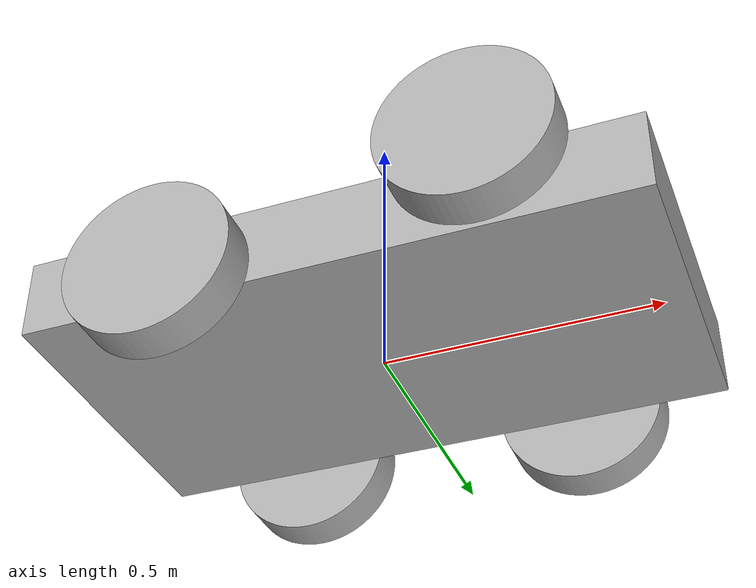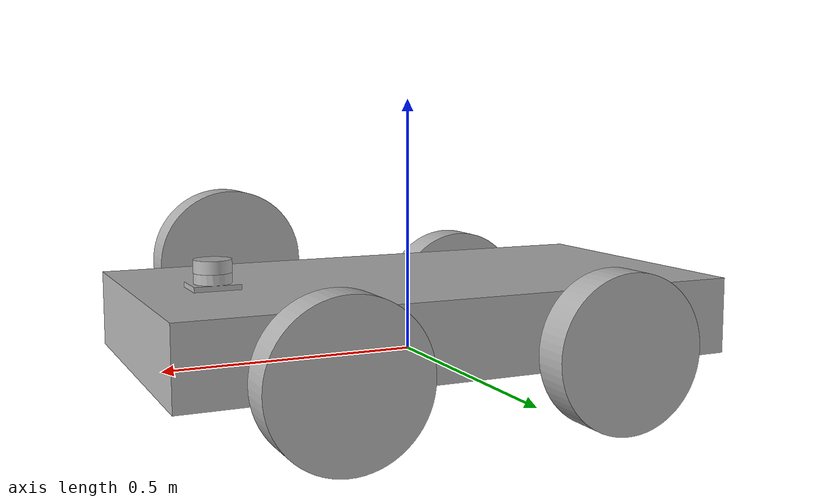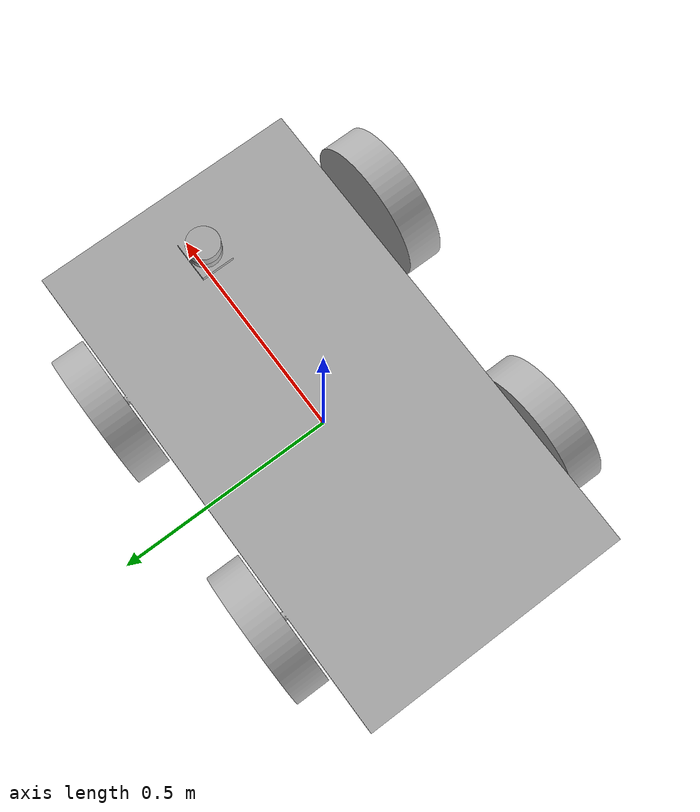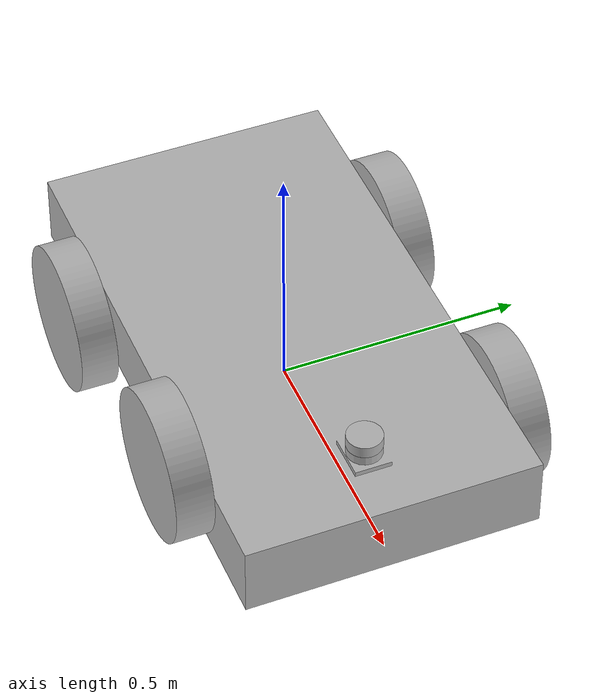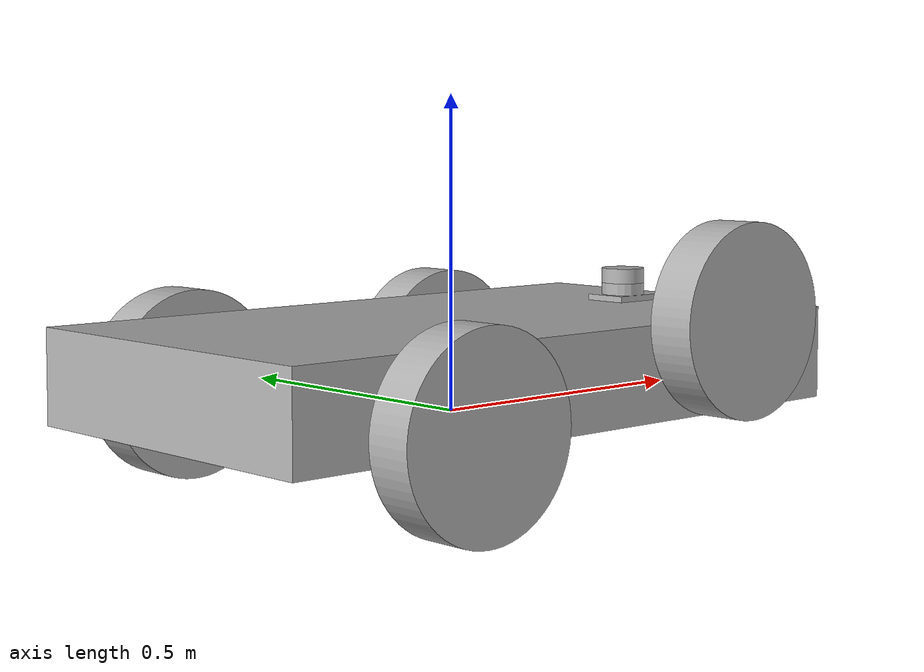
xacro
<?xml version="1.0" ?>
<robot name="Sim" xmlns:xacro="http://www.ros.org/wiki/xacro">

<xacro:include filename="$(find Sim_description)/urdf/materials.xacro" />
<xacro:include filename="$(find Sim_description)/urdf/Sim.trans" />
<xacro:include filename="$(find Sim_description)/urdf/Sim.gazebo" />
<link name="base_link">
  <inertial>
    <origin rpy="0 0 0" xyz="0.0006007577009604456 -2.0009250954814774e-19 0.1912775586930594"/>
    <mass value="105.11118623932714"/>
    <inertia ixx="3.347522" ixy="0.0" ixz="-0.005562" iyy="10.805776" iyz="0.0" izz="13.757255"/>
  </inertial>
  <visual>
    <origin rpy="0 0 0" xyz="0 0 0"/>
    <geometry>
      <mesh filename="package://Sim_description/meshes/base_link.stl" scale="0.001 0.001 0.001"/>
    </geometry>
    <material name="silver"/>
  </visual>
  <collision>
    <origin rpy="0 0 0" xyz="0 0 0"/>
    <geometry>
      <mesh filename="package://Sim_description/meshes/base_link.stl" scale="0.001 0.001 0.001"/>
    </geometry>
  </collision>
</link>

<link name="wheel1_1">
  <inertial>
    <origin rpy="0 0 0" xyz="-1.1102230246251565e-16 -0.03810000000000002 3.6914915568786455e-15"/>
    <mass value="5.17079983877615"/>
    <inertia ixx="0.032526" ixy="0.0" ixz="0.0" iyy="0.060048" iyz="0.0" izz="0.032526"/>
  </inertial>
  <visual>
    <origin rpy="0 0 0" xyz="-0.275 0.31 -0.1524"/>
    <geometry>
      <mesh filename="package://Sim_description/meshes/wheel1_1.stl" scale="0.001 0.001 0.001"/>
    </geometry>
    <material name="silver"/>
  </visual>
  <collision>
    <origin rpy="0 0 0" xyz="-0.275 0.31 -0.1524"/>
    <geometry>
      <mesh filename="package://Sim_description/meshes/wheel1_1.stl" scale="0.001 0.001 0.001"/>
    </geometry>
  </collision>
</link>

<link name="wheel4_1">
  <inertial>
    <origin rpy="0 0 0" xyz="-5.551115123125783e-17 -0.038099999999999856 3.6914915568786455e-15"/>
    <mass value="5.17079983877615"/>
    <inertia ixx="0.032526" ixy="-0.0" ixz="0.0" iyy="0.060048" iyz="0.0" izz="0.032526"/>
  </inertial>
  <visual>
    <origin rpy="0 0 0" xyz="0.275 0.31 -0.1524"/>
    <geometry>
      <mesh filename="package://Sim_description/meshes/wheel4_1.stl" scale="0.001 0.001 0.001"/>
    </geometry>
    <material name="silver"/>
  </visual>
  <collision>
    <origin rpy="0 0 0" xyz="0.275 0.31 -0.1524"/>
    <geometry>
      <mesh filename="package://Sim_description/meshes/wheel4_1.stl" scale="0.001 0.001 0.001"/>
    </geometry>
  </collision>
</link>

<link name="wheel3_1">
  <inertial>
    <origin rpy="0 0 0" xyz="1.1102230246251565e-16 0.03810000000000002 3.6914915568786455e-15"/>
    <mass value="5.17079983877615"/>
    <inertia ixx="0.032526" ixy="-0.0" ixz="0.0" iyy="0.060048" iyz="-0.0" izz="0.032526"/>
  </inertial>
  <visual>
    <origin rpy="0 0 0" xyz="0.275 -0.31 -0.1524"/>
    <geometry>
      <mesh filename="package://Sim_description/meshes/wheel3_1.stl" scale="0.001 0.001 0.001"/>
    </geometry>
    <material name="silver"/>
  </visual>
  <collision>
    <origin rpy="0 0 0" xyz="0.275 -0.31 -0.1524"/>
    <geometry>
      <mesh filename="package://Sim_description/meshes/wheel3_1.stl" scale="0.001 0.001 0.001"/>
    </geometry>
  </collision>
</link>

<link name="wheel2_1">
  <inertial>
    <origin rpy="0 0 0" xyz="1.1102230246251565e-16 0.038099999999999856 3.6914915568786455e-15"/>
    <mass value="5.17079983877615"/>
    <inertia ixx="0.032526" ixy="0.0" ixz="0.0" iyy="0.060048" iyz="0.0" izz="0.032526"/>
  </inertial>
  <visual>
    <origin rpy="0 0 0" xyz="-0.275 -0.31 -0.1524"/>
    <geometry>
      <mesh filename="package://Sim_description/meshes/wheel2_1.stl" scale="0.001 0.001 0.001"/>
    </geometry>
    <material name="silver"/>
  </visual>
  <collision>
    <origin rpy="0 0 0" xyz="-0.275 -0.31 -0.1524"/>
    <geometry>
      <mesh filename="package://Sim_description/meshes/wheel2_1.stl" scale="0.001 0.001 0.001"/>
    </geometry>
  </collision>
</link>

<link name="lidar_1">
  <inertial>
    <origin rpy="0 0 0" xyz="5.551115123125783e-17 -1.388112759759698e-16 0.01250000000000362"/>
    <mass value="0.10789485809488791"/>
    <inertia ixx="4.1e-05" ixy="-0.0" ixz="0.0" iyy="4.1e-05" iyz="-0.0" izz="7e-05"/>
  </inertial>
  <visual>
    <origin rpy="0 0 0" xyz="-0.4 0.0 -0.29615"/>
    <geometry>
      <mesh filename="package://Sim_description/meshes/lidar_1.stl" scale="0.001 0.001 0.001"/>
    </geometry>
    <material name="silver"/>
  </visual>
  <collision>
    <origin rpy="0 0 0" xyz="-0.4 0.0 -0.29615"/>
    <geometry>
      <mesh filename="package://Sim_description/meshes/lidar_1.stl" scale="0.001 0.001 0.001"/>
    </geometry>
  </collision>
</link>

<joint name="Rev6" type="continuous">
  <origin rpy="0 0 0" xyz="0.275 -0.31 0.1524"/>
  <parent link="base_link"/>
  <child link="wheel1_1"/>
  <axis xyz="-0.0 -1.0 0.0"/>
</joint>

<joint name="Rev7" type="continuous">
  <origin rpy="0 0 0" xyz="-0.275 -0.31 0.1524"/>
  <parent link="base_link"/>
  <child link="wheel4_1"/>
  <axis xyz="-0.0 -1.0 0.0"/>
</joint>

<joint name="Rev8" type="continuous">
  <origin rpy="0 0 0" xyz="-0.275 0.31 0.1524"/>
  <parent link="base_link"/>
  <child link="wheel3_1"/>
  <axis xyz="0.0 1.0 0.0"/>
</joint>

<joint name="Rev9" type="continuous">
  <origin rpy="0 0 0" xyz="0.275 0.31 0.1524"/>
  <parent link="base_link"/>
  <child link="wheel2_1"/>
  <axis xyz="0.0 1.0 0.0"/>
</joint>

<joint name="Rigid10" type="fixed">
  <origin rpy="0 0 0" xyz="0.4 0.0 0.29615"/>
  <parent link="base_link"/>
  <child link="lidar_1"/>
</joint>

</robot>

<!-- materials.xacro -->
<robot name="Sim" xmlns:xacro="http://www.ros.org/wiki/xacro" >

<material name="silver">
  <color rgba="0.700 0.700 0.700 1.000"/>
</material>

</robot>

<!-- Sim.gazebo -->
<robot name="Sim" xmlns:xacro="http://www.ros.org/wiki/xacro" >

<xacro:property name="body_color" value="Gazebo/Silver" />

<gazebo>
  <plugin filename="libgazebo_ros_control.so" name="control"/>
</gazebo>
<gazebo reference="base_link">
  <material>${body_color}</material>
  <mu1>0.2</mu1>
  <mu2>0.2</mu2>
  <selfCollide>true</selfCollide>
  <gravity>true</gravity>
</gazebo>

<gazebo reference="wheel1_1">
  <material>${body_color}</material>
  <mu1>0.2</mu1>
  <mu2>0.2</mu2>
  <selfCollide>true</selfCollide>
</gazebo>

<gazebo reference="wheel4_1">
  <material>${body_color}</material>
  <mu1>0.2</mu1>
  <mu2>0.2</mu2>
  <selfCollide>true</selfCollide>
</gazebo>

<gazebo reference="wheel3_1">
  <material>${body_color}</material>
  <mu1>0.2</mu1>
  <mu2>0.2</mu2>
  <selfCollide>true</selfCollide>
</gazebo>

<gazebo reference="wheel2_1">
  <material>${body_color}</material>
  <mu1>0.2</mu1>
  <mu2>0.2</mu2>
  <selfCollide>true</selfCollide>
</gazebo>

<gazebo reference="lidar_1">
  <material>${body_color}</material>
  <mu1>0.2</mu1>
  <mu2>0.2</mu2>
  <selfCollide>true</selfCollide>
</gazebo>

</robot>
